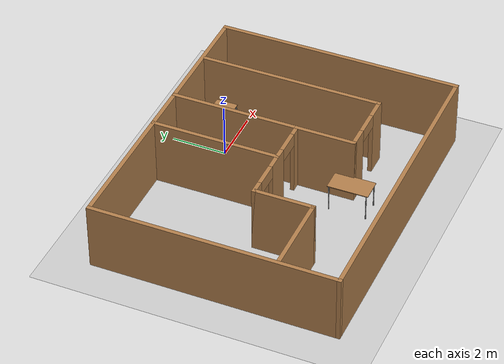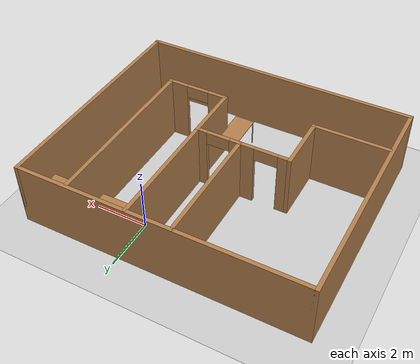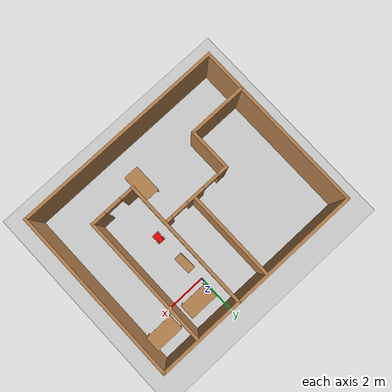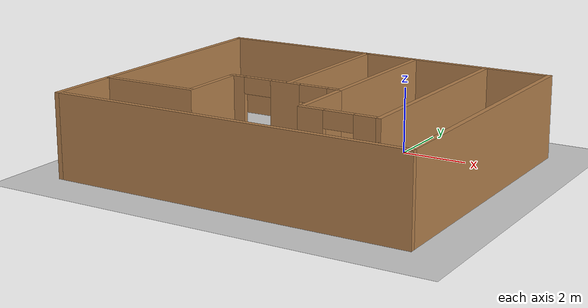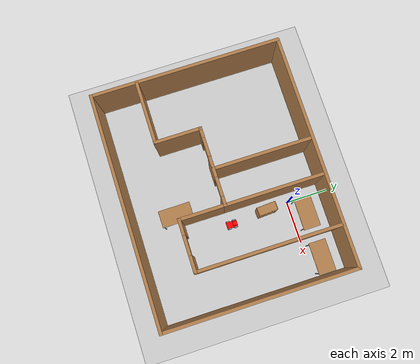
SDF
<sdf version="1.6">
 <world name="default">
  <model name="ground_plane">
   <static>1</static>
   <link name="link">
    <collision name="collision">
     <geometry><plane><normal>0 0 1</normal><size>100 100</size></plane></geometry>
     <surface>
      <contact><collide_bitmask>65535</collide_bitmask></contact>
      <friction><ode><mu>100</mu><mu2>50</mu2></ode></friction>
     </surface>
    </collision>
    <visual name="visual">
     <cast_shadows>0</cast_shadows>
     <geometry><plane><normal>0 0 1</normal><size>100 100</size></plane></geometry>
     <material>
      <script><uri>file://media/materials/scripts/gazebo.material</uri><name>Gazebo/Grey</name></script>
     </material>
    </visual>
   </link>
  </model>
  <model name="Building">
   <pose>-1.60154 -2.77516 0 0 -0 0</pose>
   <link name="Wall_0">
    <collision name="Wall_0_Collision">
     <geometry><box><size>9 0.15 2.5</size></box></geometry>
     <pose>0 0 1.25 0 -0 0</pose>
    </collision>
    <visual name="Wall_0_Visual">
     <pose>0 0 1.25 0 -0 0</pose>
     <geometry><box><size>9 0.15 2.5</size></box></geometry>
     <material>
      <script><uri>file://media/materials/scripts/gazebo.material</uri><name>Gazebo/Wood</name></script>
      <ambient>1 1 1 1</ambient>
     </material>
     <meta><layer>0</layer></meta>
    </visual>
    <pose>-5.425 0 0 0 -0 1.5708</pose>
   </link>
   <link name="Wall_1">
    <collision name="Wall_1_Collision">
     <geometry><box><size>11 0.15 2.5</size></box></geometry>
     <pose>0 0 1.25 0 -0 0</pose>
    </collision>
    <visual name="Wall_1_Visual">
     <pose>0 0 1.25 0 -0 0</pose>
     <geometry><box><size>11 0.15 2.5</size></box></geometry>
     <material>
      <script><uri>file://media/materials/scripts/gazebo.material</uri><name>Gazebo/Wood</name></script>
      <ambient>1 1 1 1</ambient>
     </material>
     <meta><layer>0</layer></meta>
    </visual>
    <pose>0 4.425 0 0 -0 0</pose>
   </link>
   <link name="Wall_10">
    <collision name="Wall_10_Collision">
     <geometry><box><size>4.75 0.15 2.5</size></box></geometry>
     <pose>0 0 1.25 0 -0 0</pose>
    </collision>
    <visual name="Wall_10_Visual">
     <pose>0 0 1.25 0 -0 0</pose>
     <geometry><box><size>4.75 0.15 2.5</size></box></geometry>
     <material>
      <script><uri>file://media/materials/scripts/gazebo.material</uri><name>Gazebo/Wood</name></script>
      <ambient>1 1 1 1</ambient>
     </material>
     <meta><layer>0</layer></meta>
    </visual>
    <pose>-0.594777 2.1053 0 0 -0 1.5708</pose>
   </link>
   <link name="Wall_12">
    <collision name="Wall_12_Collision">
     <geometry><box><size>2.25 0.15 2.5</size></box></geometry>
     <pose>0 0 1.25 0 -0 0</pose>
    </collision>
    <visual name="Wall_12_Visual">
     <pose>0 0 1.25 0 -0 0</pose>
     <geometry><box><size>2.25 0.15 2.5</size></box></geometry>
     <material>
      <script><uri>file://media/materials/scripts/gazebo.material</uri><name>Gazebo/Wood</name></script>
      <ambient>1 1 1 1</ambient>
     </material>
     <meta><layer>0</layer></meta>
    </visual>
    <pose>1.09379 -1.24611 0 0 0 -1.5708</pose>
   </link>
   <link name="Wall_13">
    <pose>2.26879 -2.29611 0 0 -0 0</pose>
    <visual name="Wall_13_Visual_0">
     <pose>-0.855155 0 1.25 0 -0 0</pose>
     <geometry><box><size>0.78969 0.15 2.5</size></box></geometry>
     <material>
      <script><uri>file://media/materials/scripts/gazebo.material</uri><name>Gazebo/Wood</name></script>
      <ambient>1 1 1 1</ambient>
     </material>
     <meta><layer>0</layer></meta>
    </visual>
    <collision name="Wall_13_Collision_0">
     <geometry><box><size>0.78969 0.15 2.5</size></box></geometry>
     <pose>-0.855155 0 1.25 0 -0 0</pose>
    </collision>
    <visual name="Wall_13_Visual_1">
     <pose>0.844845 0 1.25 0 -0 0</pose>
     <geometry><box><size>0.81031 0.15 2.5</size></box></geometry>
     <material>
      <script><uri>file://media/materials/scripts/gazebo.material</uri><name>Gazebo/Wood</name></script>
      <ambient>1 1 1 1</ambient>
     </material>
     <meta><layer>0</layer></meta>
    </visual>
    <collision name="Wall_13_Collision_1">
     <geometry><box><size>0.81031 0.15 2.5</size></box></geometry>
     <pose>0.844845 0 1.25 0 -0 0</pose>
    </collision>
    <visual name="Wall_13_Visual_2">
     <pose>-0.01031 0 2.25 0 -0 0</pose>
     <geometry><box><size>0.9 0.15 0.5</size></box></geometry>
     <material>
      <script><uri>file://media/materials/scripts/gazebo.material</uri><name>Gazebo/Wood</name></script>
      <ambient>1 1 1 1</ambient>
     </material>
     <meta><layer>0</layer></meta>
    </visual>
    <collision name="Wall_13_Collision_2">
     <geometry><box><size>0.9 0.15 0.5</size></box></geometry>
     <pose>-0.01031 0 2.25 0 -0 0</pose>
    </collision>
   </link>
   <link name="Wall_16">
    <collision name="Wall_16_Collision">
     <geometry><box><size>6.75 0.15 2.5</size></box></geometry>
     <pose>0 0 1.25 0 -0 0</pose>
    </collision>
    <visual name="Wall_16_Visual">
     <pose>0 0 1.25 0 -0 0</pose>
     <geometry><box><size>6.75 0.15 2.5</size></box></geometry>
     <material>
      <script><uri>file://media/materials/scripts/gazebo.material</uri><name>Gazebo/Wood</name></script>
      <ambient>1 1 1 1</ambient>
     </material>
     <meta><layer>0</layer></meta>
    </visual>
    <pose>3.44379 1.00389 0 0 -0 1.5708</pose>
   </link>
   <link name="Wall_2">
    <collision name="Wall_2_Collision">
     <geometry><box><size>9 0.15 2.5</size></box></geometry>
     <pose>0 0 1.25 0 -0 0</pose>
    </collision>
    <visual name="Wall_2_Visual">
     <pose>0 0 1.25 0 -0 0</pose>
     <geometry><box><size>9 0.15 2.5</size></box></geometry>
     <material>
      <script><uri>file://media/materials/scripts/gazebo.material</uri><name>Gazebo/Wood</name></script>
      <ambient>1 1 1 1</ambient>
     </material>
     <meta><layer>0</layer></meta>
    </visual>
    <pose>5.425 0 0 0 0 -1.5708</pose>
   </link>
   <link name="Wall_3">
    <collision name="Wall_3_Collision">
     <geometry><box><size>11 0.15 2.5</size></box></geometry>
     <pose>0 0 1.25 0 -0 0</pose>
    </collision>
    <visual name="Wall_3_Visual">
     <pose>0 0 1.25 0 -0 0</pose>
     <geometry><box><size>11 0.15 2.5</size></box></geometry>
     <material>
      <script><uri>file://media/materials/scripts/gazebo.material</uri><name>Gazebo/Wood</name></script>
      <ambient>1 1 1 1</ambient>
     </material>
     <meta><layer>0</layer></meta>
    </visual>
    <pose>0 -4.425 0 0 -0 3.14159</pose>
   </link>
   <link name="Wall_5">
    <collision name="Wall_5_Collision">
     <geometry><box><size>3 0.15 2.5</size></box></geometry>
     <pose>0 0 1.25 0 -0 0</pose>
    </collision>
    <visual name="Wall_5_Visual">
     <pose>0 0 1.25 0 -0 0</pose>
     <geometry><box><size>3 0.15 2.5</size></box></geometry>
     <material>
      <script><uri>file://media/materials/scripts/gazebo.material</uri><name>Gazebo/Wood</name></script>
      <ambient>1 1 1 1</ambient>
     </material>
     <meta><layer>0</layer></meta>
    </visual>
    <pose>-3.93121 -2.29611 0 0 -0 0</pose>
   </link>
   <link name="Wall_6">
    <collision name="Wall_6_Collision">
     <geometry><box><size>2.25 0.15 2.5</size></box></geometry>
     <pose>0 0 1.25 0 -0 0</pose>
    </collision>
    <visual name="Wall_6_Visual">
     <pose>0 0 1.25 0 -0 0</pose>
     <geometry><box><size>2.25 0.15 2.5</size></box></geometry>
     <material>
      <script><uri>file://media/materials/scripts/gazebo.material</uri><name>Gazebo/Wood</name></script>
      <ambient>1 1 1 1</ambient>
     </material>
     <meta><layer>0</layer></meta>
    </visual>
    <pose>-2.50621 -1.24611 0 0 -0 1.5708</pose>
   </link>
   <link name="Wall_7">
    <pose>-0.706213 -0.196114 0 0 -0 0</pose>
    <visual name="Wall_7_Visual_0">
     <pose>-1.61914 0 1.25 0 -0 0</pose>
     <geometry><box><size>0.511721 0.15 2.5</size></box></geometry>
     <material>
      <script><uri>file://media/materials/scripts/gazebo.material</uri><name>Gazebo/Wood</name></script>
      <ambient>1 1 1 1</ambient>
     </material>
     <meta><layer>0</layer></meta>
    </visual>
    <collision name="Wall_7_Collision_0">
     <geometry><box><size>0.511721 0.15 2.5</size></box></geometry>
     <pose>-1.61914 0 1.25 0 -0 0</pose>
    </collision>
    <visual name="Wall_7_Visual_1">
     <pose>0.018958 0 1.25 0 -0 0</pose>
     <geometry><box><size>0.964474 0.15 2.5</size></box></geometry>
     <material>
      <script><uri>file://media/materials/scripts/gazebo.material</uri><name>Gazebo/Wood</name></script>
      <ambient>1 1 1 1</ambient>
     </material>
     <meta><layer>0</layer></meta>
    </visual>
    <collision name="Wall_7_Collision_1">
     <geometry><box><size>0.964474 0.15 2.5</size></box></geometry>
     <pose>0.018958 0 1.25 0 -0 0</pose>
    </collision>
    <visual name="Wall_7_Visual_2">
     <pose>1.6381 0 1.25 0 -0 0</pose>
     <geometry><box><size>0.473805 0.15 2.5</size></box></geometry>
     <material>
      <script><uri>file://media/materials/scripts/gazebo.material</uri><name>Gazebo/Wood</name></script>
      <ambient>1 1 1 1</ambient>
     </material>
     <meta><layer>0</layer></meta>
    </visual>
    <collision name="Wall_7_Collision_2">
     <geometry><box><size>0.473805 0.15 2.5</size></box></geometry>
     <pose>1.6381 0 1.25 0 -0 0</pose>
    </collision>
    <visual name="Wall_7_Visual_3">
     <pose>-0.913279 0 2.25 0 -0 0</pose>
     <geometry><box><size>0.9 0.15 0.5</size></box></geometry>
     <material>
      <script><uri>file://media/materials/scripts/gazebo.material</uri><name>Gazebo/Wood</name></script>
      <ambient>1 1 1 1</ambient>
     </material>
     <meta><layer>0</layer></meta>
    </visual>
    <collision name="Wall_7_Collision_3">
     <geometry><box><size>0.9 0.15 0.5</size></box></geometry>
     <pose>-0.913279 0 2.25 0 -0 0</pose>
    </collision>
    <visual name="Wall_7_Visual_4">
     <pose>0.951195 0 2.25 0 -0 0</pose>
     <geometry><box><size>0.9 0.15 0.5</size></box></geometry>
     <material>
      <script><uri>file://media/materials/scripts/gazebo.material</uri><name>Gazebo/Wood</name></script>
      <ambient>1 1 1 1</ambient>
     </material>
     <meta><layer>0</layer></meta>
    </visual>
    <collision name="Wall_7_Collision_4">
     <geometry><box><size>0.9 0.15 0.5</size></box></geometry>
     <pose>0.951195 0 2.25 0 -0 0</pose>
    </collision>
   </link>
   <link name="Wall_8">
    <collision name="Wall_8_Collision">
     <geometry><box><size>4.75 0.15 2.5</size></box></geometry>
     <pose>0 0 1.25 0 -0 0</pose>
    </collision>
    <visual name="Wall_8_Visual">
     <pose>0 0 1.25 0 -0 0</pose>
     <geometry><box><size>4.75 0.15 2.5</size></box></geometry>
     <material>
      <script><uri>file://media/materials/scripts/gazebo.material</uri><name>Gazebo/Wood</name></script>
      <ambient>1 1 1 1</ambient>
     </material>
     <meta><layer>0</layer></meta>
    </visual>
    <pose>1.09379 2.10389 0 0 -0 1.5708</pose>
   </link>
   <static>1</static>
  </model>
  <model name="table_2">
   <static>1</static>
   <link name="link">
    <collision name="surface">
     <pose>0 0 1 0 -0 0</pose>
     <geometry><box><size>1.5 0.8 0.03</size></box></geometry>
     <surface><friction><ode><mu>0.6</mu><mu2>0.6</mu2></ode></friction></surface>
    </collision>
    <visual name="visual1">
     <pose>0 0 1 0 -0 0</pose>
     <geometry><box><size>1.5 0.8 0.03</size></box></geometry>
     <material>
      <script><uri>file://media/materials/scripts/gazebo.material</uri><name>Gazebo/Wood</name></script>
     </material>
    </visual>
    <collision name="front_left_leg">
     <pose>0.68 0.38 0.5 0 -0 0</pose>
     <geometry><cylinder><radius>0.02</radius><length>1</length></cylinder></geometry>
    </collision>
    <visual name="front_left_leg">
     <pose>0.68 0.38 0.5 0 -0 0</pose>
     <geometry><cylinder><radius>0.02</radius><length>1</length></cylinder></geometry>
     <material>
      <script><uri>file://media/materials/scripts/gazebo.material</uri><name>Gazebo/Grey</name></script>
     </material>
    </visual>
    <collision name="front_right_leg">
     <pose>0.68 -0.38 0.5 0 -0 0</pose>
     <geometry><cylinder><radius>0.02</radius><length>1</length></cylinder></geometry>
    </collision>
    <visual name="front_right_leg">
     <pose>0.68 -0.38 0.5 0 -0 0</pose>
     <geometry><cylinder><radius>0.02</radius><length>1</length></cylinder></geometry>
     <material>
      <script><uri>file://media/materials/scripts/gazebo.material</uri><name>Gazebo/Grey</name></script>
     </material>
    </visual>
    <collision name="back_right_leg">
     <pose>-0.68 -0.38 0.5 0 -0 0</pose>
     <geometry><cylinder><radius>0.02</radius><length>1</length></cylinder></geometry>
    </collision>
    <visual name="back_right_leg">
     <pose>-0.68 -0.38 0.5 0 -0 0</pose>
     <geometry><cylinder><radius>0.02</radius><length>1</length></cylinder></geometry>
     <material>
      <script><uri>file://media/materials/scripts/gazebo.material</uri><name>Gazebo/Grey</name></script>
     </material>
    </visual>
    <collision name="back_left_leg">
     <pose>-0.68 0.38 0.5 0 -0 0</pose>
     <geometry><cylinder><radius>0.02</radius><length>1</length></cylinder></geometry>
    </collision>
    <visual name="back_left_leg">
     <pose>-0.68 0.38 0.5 0 -0 0</pose>
     <geometry><cylinder><radius>0.02</radius><length>1</length></cylinder></geometry>
     <material>
      <script><uri>file://media/materials/scripts/gazebo.material</uri><name>Gazebo/Grey</name></script>
     </material>
    </visual>
   </link>
   <pose>0.79209 0.577353 0 0 -0 0</pose>
  </model>
  <model name="bookshelf_1">
   <static>1</static>
   <link name="link">
    <inertial><mass>1</mass></inertial>
    <collision name="back">
     <pose>0 0.005 0.6 0 -0 0</pose>
     <geometry><box><size>0.9 0.01 1.2</size></box></geometry>
    </collision>
    <visual name="visual1">
     <pose>0 0.005 0.6 0 -0 0</pose>
     <geometry><box><size>0.9 0.01 1.2</size></box></geometry>
     <material>
      <script><uri>file://media/materials/scripts/gazebo.material</uri><name>Gazebo/Wood</name></script>
     </material>
    </visual>
    <collision name="left_side">
     <pose>0.45 -0.195 0.6 0 -0 0</pose>
     <geometry><box><size>0.02 0.4 1.2</size></box></geometry>
    </collision>
    <visual name="visual2">
     <pose>0.45 -0.195 0.6 0 -0 0</pose>
     <geometry><box><size>0.02 0.4 1.2</size></box></geometry>
     <material>
      <script><uri>file://media/materials/scripts/gazebo.material</uri><name>Gazebo/Wood</name></script>
     </material>
    </visual>
    <collision name="right_side">
     <pose>-0.45 -0.195 0.6 0 -0 0</pose>
     <geometry><box><size>0.02 0.4 1.2</size></box></geometry>
    </collision>
    <visual name="visual3">
     <pose>-0.45 -0.195 0.6 0 -0 0</pose>
     <geometry><box><size>0.02 0.4 1.2</size></box></geometry>
     <material>
      <script><uri>file://media/materials/scripts/gazebo.material</uri><name>Gazebo/Wood</name></script>
     </material>
    </visual>
    <collision name="bottom">
     <pose>0 -0.195 0.03 0 -0 0</pose>
     <geometry><box><size>0.88 0.4 0.06</size></box></geometry>
    </collision>
    <visual name="visual4">
     <pose>0 -0.195 0.03 0 -0 0</pose>
     <geometry><box><size>0.88 0.4 0.06</size></box></geometry>
     <material>
      <script><uri>file://media/materials/scripts/gazebo.material</uri><name>Gazebo/Wood</name></script>
     </material>
    </visual>
    <collision name="top">
     <pose>0 -0.195 1.19 0 -0 0</pose>
     <geometry><box><size>0.88 0.4 0.02</size></box></geometry>
    </collision>
    <visual name="visual5">
     <pose>0 -0.195 1.19 0 -0 0</pose>
     <geometry><box><size>0.88 0.4 0.02</size></box></geometry>
     <material>
      <script><uri>file://media/materials/scripts/gazebo.material</uri><name>Gazebo/Wood</name></script>
     </material>
    </visual>
    <collision name="low_shelf">
     <pose>0 -0.195 0.43 0 -0 0</pose>
     <geometry><box><size>0.88 0.4 0.02</size></box></geometry>
    </collision>
    <visual name="visual6">
     <pose>0 -0.195 0.43 0 -0 0</pose>
     <geometry><box><size>0.88 0.4 0.02</size></box></geometry>
     <material>
      <script><uri>file://media/materials/scripts/gazebo.material</uri><name>Gazebo/Wood</name></script>
     </material>
    </visual>
    <collision name="high_shelf">
     <pose>0 -0.195 0.8 0 -0 0</pose>
     <geometry><box><size>0.88 0.4 0.02</size></box></geometry>
    </collision>
    <visual name="visual7">
     <pose>0 -0.195 0.8 0 -0 0</pose>
     <geometry><box><size>0.88 0.4 0.02</size></box></geometry>
     <material>
      <script><uri>file://media/materials/scripts/gazebo.material</uri><name>Gazebo/Wood</name></script>
     </material>
    </visual>
   </link>
   <pose>-0.106741 -1.14104 0 0 -0 1.62265</pose>
  </model>
  <model name="table_3">
   <static>1</static>
   <link name="link">
    <collision name="surface">
     <pose>0 0 1 0 -0 0</pose>
     <geometry><box><size>1.5 0.8 0.03</size></box></geometry>
     <surface><friction><ode><mu>0.6</mu><mu2>0.6</mu2></ode></friction></surface>
    </collision>
    <visual name="visual1">
     <pose>0 0 1 0 -0 0</pose>
     <geometry><box><size>1.5 0.8 0.03</size></box></geometry>
     <material>
      <script><uri>file://media/materials/scripts/gazebo.material</uri><name>Gazebo/Wood</name></script>
     </material>
    </visual>
    <collision name="front_left_leg">
     <pose>0.68 0.38 0.5 0 -0 0</pose>
     <geometry><cylinder><radius>0.02</radius><length>1</length></cylinder></geometry>
    </collision>
    <visual name="front_left_leg">
     <pose>0.68 0.38 0.5 0 -0 0</pose>
     <geometry><cylinder><radius>0.02</radius><length>1</length></cylinder></geometry>
     <material>
      <script><uri>file://media/materials/scripts/gazebo.material</uri><name>Gazebo/Grey</name></script>
     </material>
    </visual>
    <collision name="front_right_leg">
     <pose>0.68 -0.38 0.5 0 -0 0</pose>
     <geometry><cylinder><radius>0.02</radius><length>1</length></cylinder></geometry>
    </collision>
    <visual name="front_right_leg">
     <pose>0.68 -0.38 0.5 0 -0 0</pose>
     <geometry><cylinder><radius>0.02</radius><length>1</length></cylinder></geometry>
     <material>
      <script><uri>file://media/materials/scripts/gazebo.material</uri><name>Gazebo/Grey</name></script>
     </material>
    </visual>
    <collision name="back_right_leg">
     <pose>-0.68 -0.38 0.5 0 -0 0</pose>
     <geometry><cylinder><radius>0.02</radius><length>1</length></cylinder></geometry>
    </collision>
    <visual name="back_right_leg">
     <pose>-0.68 -0.38 0.5 0 -0 0</pose>
     <geometry><cylinder><radius>0.02</radius><length>1</length></cylinder></geometry>
     <material>
      <script><uri>file://media/materials/scripts/gazebo.material</uri><name>Gazebo/Grey</name></script>
     </material>
    </visual>
    <collision name="back_left_leg">
     <pose>-0.68 0.38 0.5 0 -0 0</pose>
     <geometry><cylinder><radius>0.02</radius><length>1</length></cylinder></geometry>
    </collision>
    <visual name="back_left_leg">
     <pose>-0.68 0.38 0.5 0 -0 0</pose>
     <geometry><cylinder><radius>0.02</radius><length>1</length></cylinder></geometry>
     <material>
      <script><uri>file://media/materials/scripts/gazebo.material</uri><name>Gazebo/Grey</name></script>
     </material>
    </visual>
   </link>
   <pose>2.92027 0.564364 0 0 -0 0</pose>
  </model>
  <model name="table_1">
   <static>1</static>
   <link name="link">
    <collision name="surface">
     <pose>0 0 1 0 -0 0</pose>
     <geometry><box><size>1.5 0.8 0.03</size></box></geometry>
     <surface><friction><ode><mu>0.6</mu><mu2>0.6</mu2></ode></friction></surface>
    </collision>
    <visual name="visual1">
     <pose>0 0 1 0 -0 0</pose>
     <geometry><box><size>1.5 0.8 0.03</size></box></geometry>
     <material>
      <script><uri>file://media/materials/scripts/gazebo.material</uri><name>Gazebo/Wood</name></script>
     </material>
    </visual>
    <collision name="front_left_leg">
     <pose>0.68 0.38 0.5 0 -0 0</pose>
     <geometry><cylinder><radius>0.02</radius><length>1</length></cylinder></geometry>
    </collision>
    <visual name="front_left_leg">
     <pose>0.68 0.38 0.5 0 -0 0</pose>
     <geometry><cylinder><radius>0.02</radius><length>1</length></cylinder></geometry>
     <material>
      <script><uri>file://media/materials/scripts/gazebo.material</uri><name>Gazebo/Grey</name></script>
     </material>
    </visual>
    <collision name="front_right_leg">
     <pose>0.68 -0.38 0.5 0 -0 0</pose>
     <geometry><cylinder><radius>0.02</radius><length>1</length></cylinder></geometry>
    </collision>
    <visual name="front_right_leg">
     <pose>0.68 -0.38 0.5 0 -0 0</pose>
     <geometry><cylinder><radius>0.02</radius><length>1</length></cylinder></geometry>
     <material>
      <script><uri>file://media/materials/scripts/gazebo.material</uri><name>Gazebo/Grey</name></script>
     </material>
    </visual>
    <collision name="back_right_leg">
     <pose>-0.68 -0.38 0.5 0 -0 0</pose>
     <geometry><cylinder><radius>0.02</radius><length>1</length></cylinder></geometry>
    </collision>
    <visual name="back_right_leg">
     <pose>-0.68 -0.38 0.5 0 -0 0</pose>
     <geometry><cylinder><radius>0.02</radius><length>1</length></cylinder></geometry>
     <material>
      <script><uri>file://media/materials/scripts/gazebo.material</uri><name>Gazebo/Grey</name></script>
     </material>
    </visual>
    <collision name="back_left_leg">
     <pose>-0.68 0.38 0.5 0 -0 0</pose>
     <geometry><cylinder><radius>0.02</radius><length>1</length></cylinder></geometry>
    </collision>
    <visual name="back_left_leg">
     <pose>-0.68 0.38 0.5 0 -0 0</pose>
     <geometry><cylinder><radius>0.02</radius><length>1</length></cylinder></geometry>
     <material>
      <script><uri>file://media/materials/scripts/gazebo.material</uri><name>Gazebo/Grey</name></script>
     </material>
    </visual>
   </link>
   <pose>-0.937626 -5.19495 0 0 0 -1.56525</pose>
  </model>
  <model name="RobotCar">
   <link name="link_0_clone">
    <pose>-0 -0.025 -0.025 0 -0 0</pose>
    <inertial>
     <mass>0.5</mass>
     <inertia>
      <ixx>0.166667</ixx>
      <ixy>0</ixy>
      <ixz>0</ixz>
      <iyy>0.166667</iyy>
      <iyz>0</iyz>
      <izz>0.166667</izz>
     </inertia>
    </inertial>
    <visual name="visual">
     <geometry><box><size>0.3 0.5 0.1</size></box></geometry>
     <material>
      <lighting>1</lighting>
      <script><uri>file://media/materials/scripts/gazebo.material</uri><name>Gazebo/Grey</name></script>
      <shader type="pixel"><normal_map>__default__</normal_map></shader>
      <ambient>1 0 0 1</ambient>
      <diffuse>0.7 0.7 0.7 1</diffuse>
      <specular>0.01 0.01 0.01 1</specular>
      <emissive>0 0 0 1</emissive>
     </material>
    </visual>
    <collision name="collision">
     <geometry><box><size>0.3 0.5 0.1</size></box></geometry>
     <surface>
      <friction>
       <ode><mu>1</mu><mu2>1</mu2><fdir1>0 0 0</fdir1><slip1>0</slip1><slip2>0</slip2></ode>
       <torsional>
        <coefficient>1</coefficient>
        <patch_radius>0</patch_radius>
        <surface_radius>0</surface_radius>
        <use_patch_radius>1</use_patch_radius>
        <ode><slip>0</slip></ode>
       </torsional>
      </friction>
      <bounce><restitution_coefficient>0</restitution_coefficient><threshold>1e+06</threshold></bounce>
      <contact>
       <collide_without_contact>0</collide_without_contact>
       <collide_without_contact_bitmask>1</collide_without_contact_bitmask>
       <collide_bitmask>1</collide_bitmask>
       <ode>
        <soft_cfm>0</soft_cfm>
        <soft_erp>0.2</soft_erp>
        <kp>1e+13</kp>
        <kd>1</kd>
        <max_vel>0.01</max_vel>
        <min_depth>0</min_depth>
       </ode>
       <bullet>
        <split_impulse>1</split_impulse>
        <split_impulse_penetration_threshold>-0.01</split_impulse_penetration_threshold>
        <soft_cfm>0</soft_cfm>
        <soft_erp>0.2</soft_erp>
        <kp>1e+13</kp>
        <kd>1</kd>
       </bullet>
      </contact>
     </surface>
    </collision>
   </link>
   <link name="link_4_clone">
    <pose>-0.17508 0.124999 -0.025 0 -1.57 0</pose>
    <inertial>
     <mass>1</mass>
     <inertia><ixx>0.145833</ixx><ixy>0</ixy><ixz>0</ixz><iyy>0.145833</iyy><iyz>0</iyz><izz>0.125</izz></inertia>
    </inertial>
    <visual name="visual">
     <geometry><cylinder><radius>0.1</radius><length>0.05</length></cylinder></geometry>
     <material>
      <lighting>1</lighting>
      <script><uri>file://media/materials/scripts/gazebo.material</uri><name>Gazebo/Grey</name></script>
      <shader type="pixel"><normal_map>__default__</normal_map></shader>
      <ambient>0.3 0.3 0.3 1</ambient>
      <diffuse>0.7 0.7 0.7 1</diffuse>
      <specular>0.01 0.01 0.01 1</specular>
      <emissive>0 0 0 1</emissive>
     </material>
    </visual>
    <collision name="collision">
     <geometry><cylinder><radius>0.1</radius><length>0.05</length></cylinder></geometry>
     <surface>
      <friction>
       <ode><mu>1</mu><mu2>1</mu2><fdir1>0 0 0</fdir1><slip1>0</slip1><slip2>0</slip2></ode>
       <torsional>
        <coefficient>1</coefficient>
        <patch_radius>0</patch_radius>
        <surface_radius>0</surface_radius>
        <use_patch_radius>1</use_patch_radius>
        <ode><slip>0</slip></ode>
       </torsional>
      </friction>
      <bounce><restitution_coefficient>0</restitution_coefficient><threshold>1e+06</threshold></bounce>
      <contact>
       <collide_without_contact>0</collide_without_contact>
       <collide_without_contact_bitmask>1</collide_without_contact_bitmask>
       <collide_bitmask>1</collide_bitmask>
       <ode>
        <soft_cfm>0</soft_cfm>
        <soft_erp>0.2</soft_erp>
        <kp>1e+13</kp>
        <kd>1</kd>
        <max_vel>0.01</max_vel>
        <min_depth>0</min_depth>
       </ode>
       <bullet>
        <split_impulse>1</split_impulse>
        <split_impulse_penetration_threshold>-0.01</split_impulse_penetration_threshold>
        <soft_cfm>0</soft_cfm>
        <soft_erp>0.2</soft_erp>
        <kp>1e+13</kp>
        <kd>1</kd>
       </bullet>
      </contact>
     </surface>
    </collision>
   </link>
   <link name="link_4_clone_clone">
    <pose>0.17508 0.124999 -0.025 0 -1.57 0</pose>
    <inertial>
     <mass>1</mass>
     <inertia><ixx>0.145833</ixx><ixy>0</ixy><ixz>0</ixz><iyy>0.145833</iyy><iyz>0</iyz><izz>0.125</izz></inertia>
    </inertial>
    <visual name="visual">
     <geometry><cylinder><radius>0.1</radius><length>0.05</length></cylinder></geometry>
     <material>
      <lighting>1</lighting>
      <script><uri>file://media/materials/scripts/gazebo.material</uri><name>Gazebo/Grey</name></script>
      <shader type="pixel"><normal_map>__default__</normal_map></shader>
      <ambient>0.3 0.3 0.3 1</ambient>
      <diffuse>0.7 0.7 0.7 1</diffuse>
      <specular>0.01 0.01 0.01 1</specular>
      <emissive>0 0 0 1</emissive>
     </material>
    </visual>
    <collision name="collision">
     <geometry><cylinder><radius>0.1</radius><length>0.05</length></cylinder></geometry>
     <surface>
      <friction>
       <ode><mu>1</mu><mu2>1</mu2><fdir1>0 0 0</fdir1><slip1>0</slip1><slip2>0</slip2></ode>
       <torsional>
        <coefficient>1</coefficient>
        <patch_radius>0</patch_radius>
        <surface_radius>0</surface_radius>
        <use_patch_radius>1</use_patch_radius>
        <ode><slip>0</slip></ode>
       </torsional>
      </friction>
      <bounce><restitution_coefficient>0</restitution_coefficient><threshold>1e+06</threshold></bounce>
      <contact>
       <collide_without_contact>0</collide_without_contact>
       <collide_without_contact_bitmask>1</collide_without_contact_bitmask>
       <collide_bitmask>1</collide_bitmask>
       <ode>
        <soft_cfm>0</soft_cfm>
        <soft_erp>0.2</soft_erp>
        <kp>1e+13</kp>
        <kd>1</kd>
        <max_vel>0.01</max_vel>
        <min_depth>0</min_depth>
       </ode>
       <bullet>
        <split_impulse>1</split_impulse>
        <split_impulse_penetration_threshold>-0.01</split_impulse_penetration_threshold>
        <soft_cfm>0</soft_cfm>
        <soft_erp>0.2</soft_erp>
        <kp>1e+13</kp>
        <kd>1</kd>
       </bullet>
      </contact>
     </surface>
    </collision>
   </link>
   <link name="link_4_clone_clone_0">
    <pose>0.17508 -0.175 -0.025 0 -1.57 0</pose>
    <inertial>
     <mass>1</mass>
     <inertia><ixx>0.145833</ixx><ixy>0</ixy><ixz>0</ixz><iyy>0.145833</iyy><iyz>0</iyz><izz>0.125</izz></inertia>
    </inertial>
    <visual name="visual">
     <geometry><cylinder><radius>0.1</radius><length>0.05</length></cylinder></geometry>
     <material>
      <lighting>1</lighting>
      <script><uri>file://media/materials/scripts/gazebo.material</uri><name>Gazebo/Grey</name></script>
      <shader type="pixel"><normal_map>__default__</normal_map></shader>
      <ambient>0.3 0.3 0.3 1</ambient>
      <diffuse>0.7 0.7 0.7 1</diffuse>
      <specular>0.01 0.01 0.01 1</specular>
      <emissive>0 0 0 1</emissive>
     </material>
    </visual>
    <collision name="collision">
     <geometry><cylinder><radius>0.1</radius><length>0.05</length></cylinder></geometry>
     <surface>
      <friction>
       <ode><mu>1</mu><mu2>1</mu2><fdir1>0 0 0</fdir1><slip1>0</slip1><slip2>0</slip2></ode>
       <torsional>
        <coefficient>1</coefficient>
        <patch_radius>0</patch_radius>
        <surface_radius>0</surface_radius>
        <use_patch_radius>1</use_patch_radius>
        <ode><slip>0</slip></ode>
       </torsional>
      </friction>
      <bounce><restitution_coefficient>0</restitution_coefficient><threshold>1e+06</threshold></bounce>
      <contact>
       <collide_without_contact>0</collide_without_contact>
       <collide_without_contact_bitmask>1</collide_without_contact_bitmask>
       <collide_bitmask>1</collide_bitmask>
       <ode>
        <soft_cfm>0</soft_cfm>
        <soft_erp>0.2</soft_erp>
        <kp>1e+13</kp>
        <kd>1</kd>
        <max_vel>0.01</max_vel>
        <min_depth>0</min_depth>
       </ode>
       <bullet>
        <split_impulse>1</split_impulse>
        <split_impulse_penetration_threshold>-0.01</split_impulse_penetration_threshold>
        <soft_cfm>0</soft_cfm>
        <soft_erp>0.2</soft_erp>
        <kp>1e+13</kp>
        <kd>1</kd>
       </bullet>
      </contact>
     </surface>
    </collision>
   </link>
   <link name="link_4_clone_clone_1">
    <pose>-0.17508 -0.175 -0.025 0 -1.57 0</pose>
    <inertial>
     <mass>1</mass>
     <inertia><ixx>0.145833</ixx><ixy>0</ixy><ixz>0</ixz><iyy>0.145833</iyy><iyz>0</iyz><izz>0.125</izz></inertia>
    </inertial>
    <visual name="visual">
     <geometry><cylinder><radius>0.1</radius><length>0.05</length></cylinder></geometry>
     <material>
      <lighting>1</lighting>
      <script><uri>file://media/materials/scripts/gazebo.material</uri><name>Gazebo/Grey</name></script>
      <shader type="pixel"><normal_map>__default__</normal_map></shader>
      <ambient>0.3 0.3 0.3 1</ambient>
      <diffuse>0.7 0.7 0.7 1</diffuse>
      <specular>0.01 0.01 0.01 1</specular>
      <emissive>0 0 0 1</emissive>
     </material>
    </visual>
    <collision name="collision">
     <geometry><cylinder><radius>0.1</radius><length>0.05</length></cylinder></geometry>
     <surface>
      <friction>
       <ode><mu>1</mu><mu2>1</mu2><fdir1>0 0 0</fdir1><slip1>0</slip1><slip2>0</slip2></ode>
       <torsional>
        <coefficient>1</coefficient>
        <patch_radius>0</patch_radius>
        <surface_radius>0</surface_radius>
        <use_patch_radius>1</use_patch_radius>
        <ode><slip>0</slip></ode>
       </torsional>
      </friction>
      <bounce><restitution_coefficient>0</restitution_coefficient><threshold>1e+06</threshold></bounce>
      <contact>
       <collide_without_contact>0</collide_without_contact>
       <collide_without_contact_bitmask>1</collide_without_contact_bitmask>
       <collide_bitmask>1</collide_bitmask>
       <ode>
        <soft_cfm>0</soft_cfm>
        <soft_erp>0.2</soft_erp>
        <kp>1e+13</kp>
        <kd>1</kd>
        <max_vel>0.01</max_vel>
        <min_depth>0</min_depth>
       </ode>
       <bullet>
        <split_impulse>1</split_impulse>
        <split_impulse_penetration_threshold>-0.01</split_impulse_penetration_threshold>
        <soft_cfm>0</soft_cfm>
        <soft_erp>0.2</soft_erp>
        <kp>1e+13</kp>
        <kd>1</kd>
       </bullet>
      </contact>
     </surface>
    </collision>
   </link>
   <link name="link_5_clone">
    <pose>0 0.125 0.125 0 -0 0</pose>
    <inertial>
     <mass>0.2</mass>
     <inertia><ixx>1</ixx><ixy>0</ixy><ixz>0</ixz><iyy>1</iyy><iyz>0</iyz><izz>1</izz></inertia>
    </inertial>
    <visual name="visual">
     <geometry><box><size>0.2 0.2 0.2</size></box></geometry>
     <material>
      <lighting>1</lighting>
      <script><uri>file://media/materials/scripts/gazebo.material</uri><name>Gazebo/Grey</name></script>
      <shader type="pixel"><normal_map>__default__</normal_map></shader>
      <ambient>1 0 0 1</ambient>
      <diffuse>0.7 0.7 0.7 1</diffuse>
      <specular>0.01 0.01 0.01 1</specular>
      <emissive>0 0 0 1</emissive>
     </material>
    </visual>
    <collision name="collision">
     <geometry><box><size>0.2 0.2 0.2</size></box></geometry>
     <surface>
      <friction>
       <ode><mu>1</mu><mu2>1</mu2><fdir1>0 0 0</fdir1><slip1>0</slip1><slip2>0</slip2></ode>
       <torsional>
        <coefficient>1</coefficient>
        <patch_radius>0</patch_radius>
        <surface_radius>0</surface_radius>
        <use_patch_radius>1</use_patch_radius>
        <ode><slip>0</slip></ode>
       </torsional>
      </friction>
      <bounce><restitution_coefficient>0</restitution_coefficient><threshold>1e+06</threshold></bounce>
      <contact>
       <collide_without_contact>0</collide_without_contact>
       <collide_without_contact_bitmask>1</collide_without_contact_bitmask>
       <collide_bitmask>1</collide_bitmask>
       <ode>
        <soft_cfm>0</soft_cfm>
        <soft_erp>0.2</soft_erp>
        <kp>1e+13</kp>
        <kd>1</kd>
        <max_vel>0.01</max_vel>
        <min_depth>0</min_depth>
       </ode>
       <bullet>
        <split_impulse>1</split_impulse>
        <split_impulse_penetration_threshold>-0.01</split_impulse_penetration_threshold>
        <soft_cfm>0</soft_cfm>
        <soft_erp>0.2</soft_erp>
        <kp>1e+13</kp>
        <kd>1</kd>
       </bullet>
      </contact>
     </surface>
    </collision>
   </link>
   <joint name="link_0_clone_JOINT_10" type="revolute">
    <parent>link_0_clone</parent>
    <child>link_4_clone_clone_0</child>
    <axis>
     <xyz>0 0 1</xyz>
     <use_parent_model_frame>0</use_parent_model_frame>
     <limit>
      <lower>-1.79769e+308</lower>
      <upper>1.79769e+308</upper>
      <effort>-1</effort>
      <velocity>-1</velocity>
     </limit>
     <dynamics>
      <spring_reference>0</spring_reference>
      <spring_stiffness>0</spring_stiffness>
      <damping>0</damping>
      <friction>0</friction>
     </dynamics>
    </axis>
    <physics>
     <ode><limit><cfm>0</cfm><erp>0.2</erp></limit><suspension><cfm>0</cfm><erp>0.2</erp></suspension></ode>
    </physics>
   </joint>
   <joint name="link_0_clone_JOINT_11" type="fixed">
    <parent>link_0_clone</parent>
    <child>link_5_clone</child>
    <physics>
     <ode><limit><cfm>0</cfm><erp>0.2</erp></limit><suspension><cfm>0</cfm><erp>0.2</erp></suspension></ode>
    </physics>
   </joint>
   <joint name="link_0_clone_JOINT_7" type="revolute">
    <parent>link_0_clone</parent>
    <child>link_4_clone_clone_1</child>
    <axis>
     <xyz>0 0 1</xyz>
     <use_parent_model_frame>0</use_parent_model_frame>
     <limit>
      <lower>-1.79769e+308</lower>
      <upper>1.79769e+308</upper>
      <effort>-1</effort>
      <velocity>-1</velocity>
     </limit>
     <dynamics>
      <spring_reference>0</spring_reference>
      <spring_stiffness>0</spring_stiffness>
      <damping>0</damping>
      <friction>0</friction>
     </dynamics>
    </axis>
    <physics>
     <ode><limit><cfm>0</cfm><erp>0.2</erp></limit><suspension><cfm>0</cfm><erp>0.2</erp></suspension></ode>
    </physics>
   </joint>
   <joint name="link_0_clone_JOINT_8" type="revolute">
    <parent>link_0_clone</parent>
    <child>link_4_clone</child>
    <axis>
     <xyz>0 0 1</xyz>
     <use_parent_model_frame>0</use_parent_model_frame>
     <limit>
      <lower>-1.79769e+308</lower>
      <upper>1.79769e+308</upper>
      <effort>-1</effort>
      <velocity>-1</velocity>
     </limit>
     <dynamics>
      <spring_reference>0</spring_reference>
      <spring_stiffness>0</spring_stiffness>
      <damping>0</damping>
      <friction>0</friction>
     </dynamics>
    </axis>
    <physics>
     <ode><limit><cfm>0</cfm><erp>0.2</erp></limit><suspension><cfm>0</cfm><erp>0.2</erp></suspension></ode>
    </physics>
   </joint>
   <joint name="link_0_clone_JOINT_9" type="revolute">
    <parent>link_0_clone</parent>
    <child>link_4_clone_clone</child>
    <axis>
     <xyz>0 0 1</xyz>
     <use_parent_model_frame>0</use_parent_model_frame>
     <limit>
      <lower>-1.79769e+308</lower>
      <upper>1.79769e+308</upper>
      <effort>-1</effort>
      <velocity>-1</velocity>
     </limit>
     <dynamics>
      <spring_reference>0</spring_reference>
      <spring_stiffness>0</spring_stiffness>
      <damping>0</damping>
      <friction>0</friction>
     </dynamics>
    </axis>
    <physics>
     <ode><limit><cfm>0</cfm><erp>0.2</erp></limit><suspension><cfm>0</cfm><erp>0.2</erp></suspension></ode>
    </physics>
   </joint>
   <static>0</static>
   <pose>0.199993 -2.82973 0.12502 7e-06 -6e-06 0.000974</pose>
  </model>
 </world>
</sdf>
